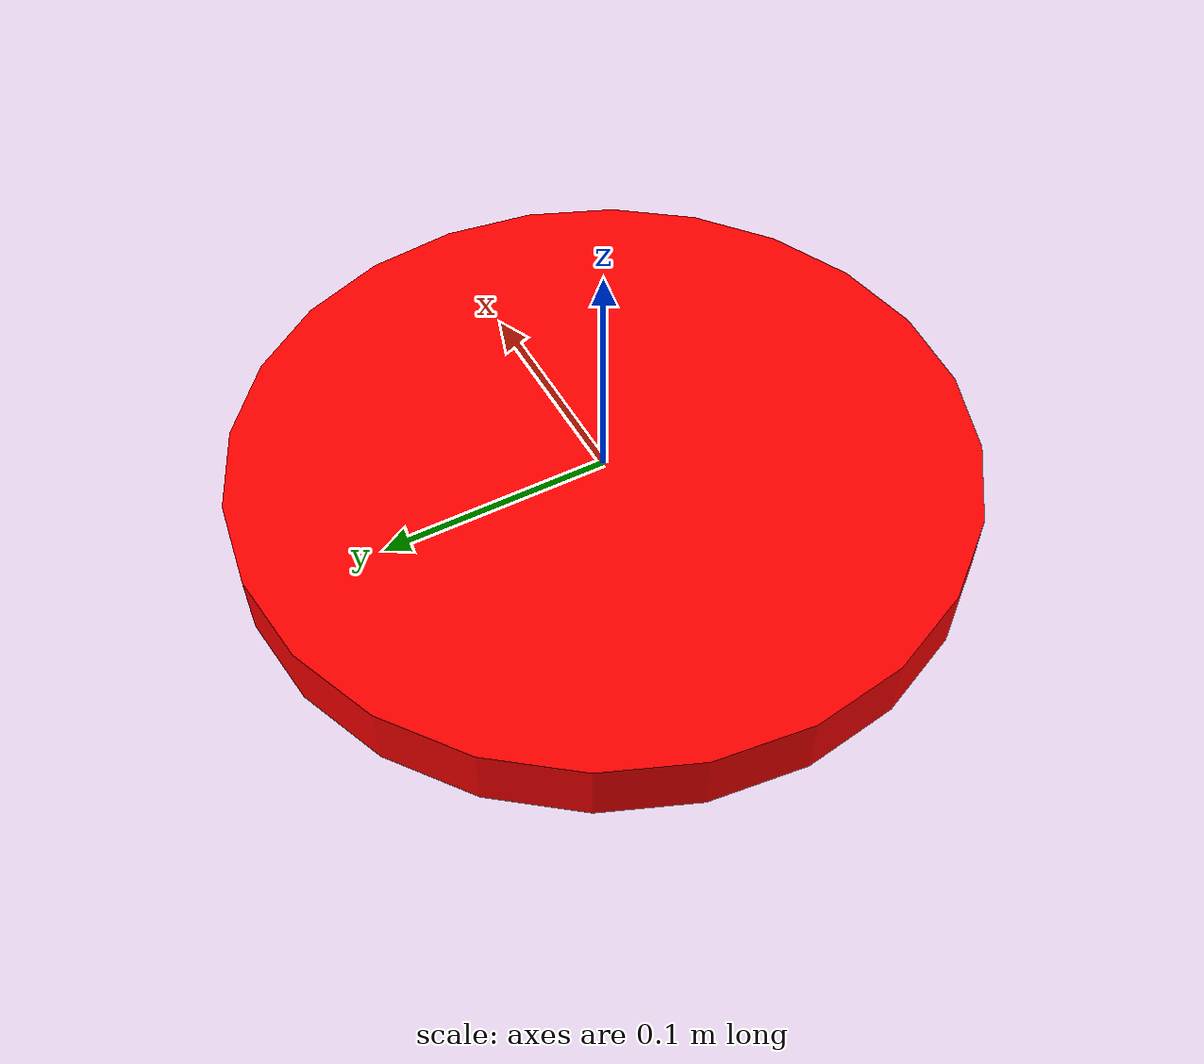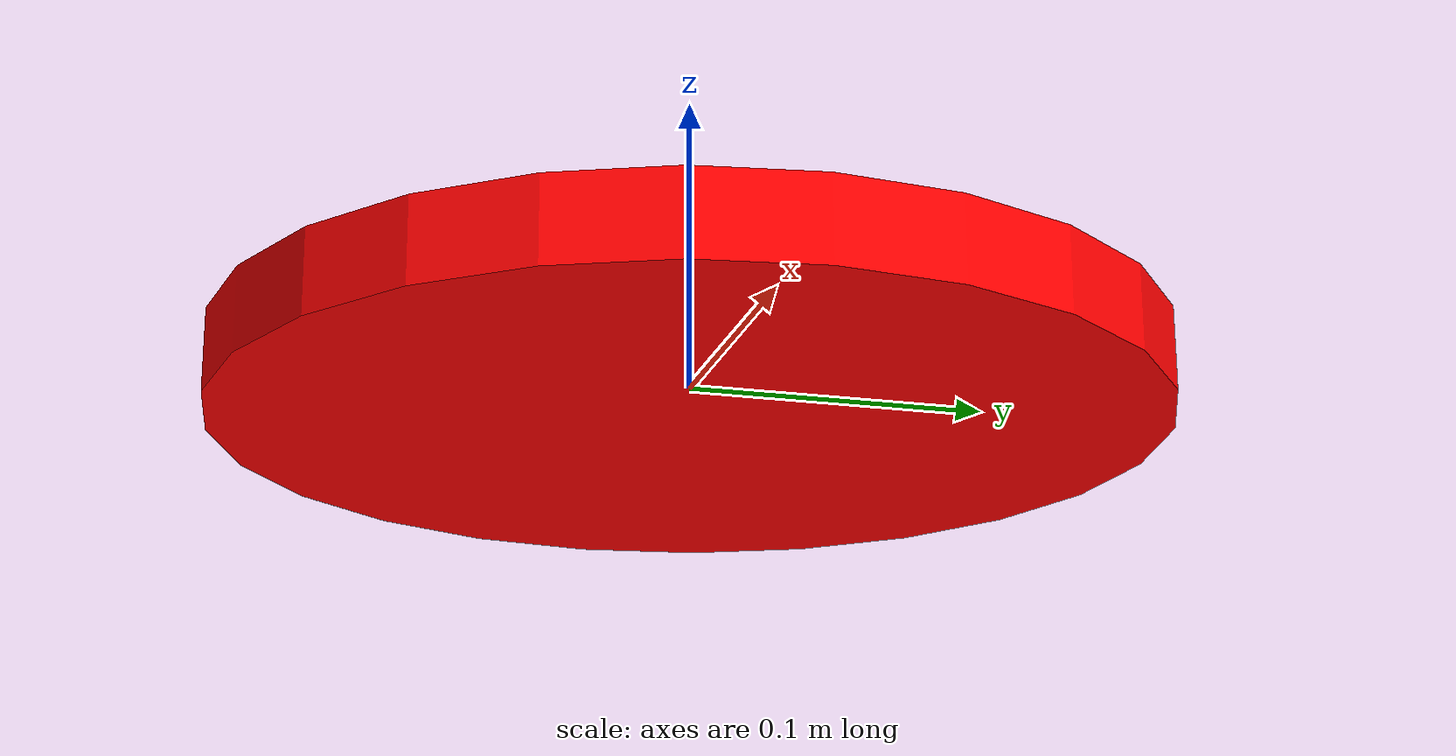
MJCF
<mujoco model="plate">
  <worldbody>
    <body>
      <body name="object">
        <geom type="cylinder" size="0.1566 0.01375" solimp="0.998 0.998 0.001" solref="0.001 1" mass="0.33" friction="0.95 0.3 0.1" condim="4" group="0" rgba="1 0 0 1"/>
        <site group="4" name="vis_site"/>
      </body>
      <site rgba="0 0 0 0" size="0.005" pos="0 0 -0.01375" name="bottom_site"/>
      <site rgba="0 0 0 0" size="0.005" pos="0 0 0.01375" name="top_site"/>
      <site rgba="0 0 0 0" size="0.005" pos="0.1566 0 0" name="horizontal_radius_site"/>
    </body>
  </worldbody>
</mujoco>
